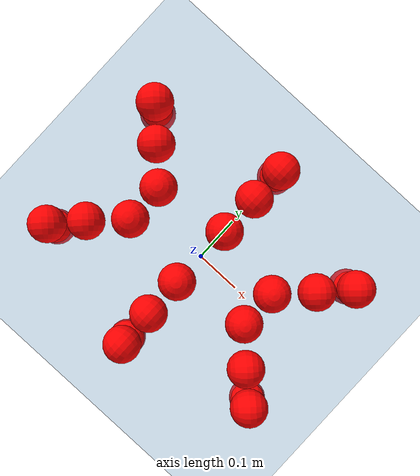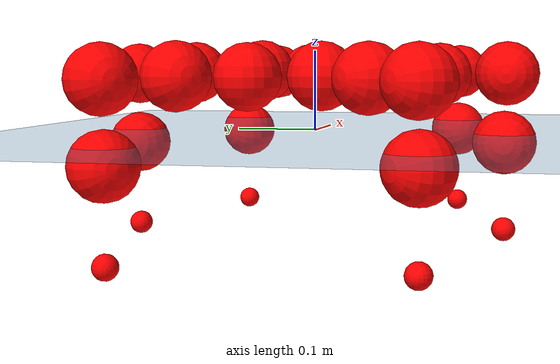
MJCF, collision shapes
<mujoco model="Golem">
  <compiler angle="radian" assetdir="assets" balanceinertia="true" inertiafromgeom="false"/>

  <option timestep="0.005" density="1.2" viscosity="2e-05"/>

  <size nkey="1"/>

  <visual>
    <quality shadowsize="8192"/>
    <map shadowclip="0.5"/>
  </visual>

  <default>
    <default class="/">
      <joint armature="0.01" damping="0.01" frictionloss="0.01"/>
      <geom contype="0" conaffinity="0" group="1" solref="-1000 -80"/>
      <site size="0.01 0.005 0.005" group="5"/>
      <general forcelimited="true" biastype="affine" gainprm="25" biasprm="0 -25 -0.5"/>
      <default class="visual">
        <geom type="mesh" group="2"/>
      </default>
      <default class="collision">
        <geom group="3"/>
      </default>
      <default class="foot">
        <geom size="0.01 0 0" condim="6" group="4" priority="1" solimp="0.015 1 0.01"/>
      </default>
      <default class="reward_collision_sphere">
        <geom group="5" rgba="1 0 0 1"/>
      </default>
    </default>
  </default>

  <asset>
    <texture type="skybox" colorspace="auto" name="//unnamed_texture_0" builtin="gradient" rgb1="0.95 0.95 0.95" rgb2="0.95 0.95 0.95" width="100" height="600"/>
    <texture type="2d" colorspace="auto" name="texplane" builtin="checker" rgb1="0.345 0.575 0.748" rgb2="0.345 0.575 0.748" markrgb="1 1 1" width="512" height="512"/>
    <material name="MatPlane" class="/" texture="texplane" texuniform="true" texrepeat="2 2" specular="0.9"/>
    <mesh name="body" class="/" file="body.stl" scale="0.001 0.001 0.001"/>
    <mesh name="coxa" class="/" file="coxa.stl" scale="0.001 0.001 0.001"/>
    <mesh name="femur" class="/" file="femur.stl" scale="0.001 0.001 0.001"/>
    <mesh name="tibia" class="/" file="tibia.stl" scale="0.001 0.001 0.001"/>
    <mesh name="tarsus" class="/" file="tarsus.stl" scale="0.001 0.001 0.001"/>
  </asset>

  <worldbody>
    <geom name="floor" class="/" size="100 100 0.125" type="plane" group="0" material="MatPlane"/>
    <light name="toplight_shadow" class="/" pos="0 0 5" dir="0.0990148 0.0990148 -0.990148" type="directional" ambient="0.04 0.04 0.04" diffuse="0.55 0.55 0.55" specular="0.12 0.12 0.12"/>
    <light name="toplight_fill" class="/" pos="0 0 5" dir="0.0990148 0.0990148 -0.990148" type="directional" castshadow="false" ambient="0.04 0.04 0.04" diffuse="0.3 0.3 0.3" specular="0.08 0.08 0.08"/>
    <body name="trunk" pos="-0.000130999 0.000298819 -0.00270602" quat="1 3.0487e-05 -6.21043e-06 -4.08878e-05">
      <inertial pos="0.00102127 -0.000110688 -0.00101087" quat="0.999957 0.00790547 -0.00321786 -0.00371474" mass="3.50831" diaginertia="0.00934829 0.0025393 0.0219097"/>
      <joint name="//unnamed_joint_0" type="free"/>
      <geom name="//unnamed_geom_1" class="/" pos="0 0 0.0748914" quat="1 0 0 0" type="mesh" rgba="0.9 0.9 0.9 1" mesh="body"/>
      <site name="imu" class="/" pos="0.130139 0.000206197 0.111897" size="0.0097294"/>
      <camera name="track" class="/" pos="0 -1.51234 0" quat="0.707107 0.707107 0 0" mode="trackcom"/>
      <camera name="ego_camera" class="/" pos="0.129021 0 0.117018" quat="-0.5 -0.5 0.5 0.5"/>
      <body name="coxa_RR" pos="-0.176317 -0.062188 0.0741123" quat="0.382749 6.69455e-05 -0.00018999 -0.923853">
        <inertial pos="-0.000395463 -0.00266583 0.000603118" quat="0.999987 -0.000858759 0.0045689 0.00196731" mass="0.177588" diaginertia="0.00912228 0.00246926 0.0210076"/>
        <joint name="coxa_joint_RR" class="/" pos="0 0 0" axis="-0.0069245 -0.00386449 -0.999969" range="-3.13997 3.10818" armature="0.00932857" damping="0.0113889" frictionloss="0.00953845"/>
        <geom name="//unnamed_geom_2" class="/" type="mesh" rgba="0.2 0.2 0.2 1" mesh="coxa"/>
        <geom name="//unnamed_geom_3" class="reward_collision_sphere" size="0.0389176" pos="-0.0297741 0 0"/>
        <body name="femur_RR" pos="0.0595009 8.30278e-05 -0.000769533" quat="0.499764 -0.499853 0.499902 0.50048">
          <inertial pos="0.00122311 0.000694378 -0.00065135" quat="0.999999 0.000514651 -0.000946294 0.000188601" mass="0.183421" diaginertia="0.00962873 0.00247045 0.0218486"/>
          <joint name="femur_joint_RR" class="/" pos="0 0 0" axis="0.000581497 0.000210104 -1" range="-3.16135 3.0862" armature="0.00891726" damping="0" frictionloss="0.0105975"/>
          <geom name="//unnamed_geom_4" class="/" type="mesh" rgba="0.9 0.9 0.9 1" mesh="femur"/>
          <geom name="//unnamed_geom_5" class="reward_collision_sphere" size="0.0389176"/>
          <body name="tibia_RR" pos="0.00100536 -0.0797247 0.00267656" quat="-0.000147593 1 2.24323e-05 0.00012479">
            <inertial pos="-0.00240945 -0.00104269 1.62909e-05" quat="0.999949 0.00454973 -0.000678868 0.00903416" mass="0.183984" diaginertia="0.00947758 0.0024955 0.0223241"/>
            <joint name="tibia_joint_RR" class="/" pos="0 0 0" axis="-0.000640676 8.07289e-05 1" range="-3.19376 3.14601" armature="0.00886497" damping="0" frictionloss="0.0096865"/>
            <geom name="//unnamed_geom_6" class="/" type="mesh" rgba="0.2 0.2 0.2 1" mesh="tibia"/>
            <geom name="//unnamed_geom_7" class="reward_collision_sphere" size="0.0389176"/>
            <body name="tarsus_RR" pos="0.0855996 0.000649518 -0.000508327" quat="1 -0.000111261 0.000430309 0.000307026">
              <inertial pos="0.0578134 0.0029607 -0.00175645" quat="0.49866 0.502173 0.499275 0.499885" mass="0.182416" diaginertia="0.00948339 0.00246238 0.0217198"/>
              <joint name="tarsus_joint_RR" class="/" pos="0 0 0" axis="-0.00236966 -0.00189666 0.999995" range="-3.15142 3.14078" armature="0.0107686" damping="0.00583629" frictionloss="0.0107896"/>
              <geom name="//unnamed_geom_8" class="/" type="mesh" rgba="0.9 0.9 0.9 1" mesh="tarsus"/>
              <geom name="foot_1" class="foot" size="0.00898592" pos="0.111157 0 0" quat="0 -0.707107 0 0.707107"/>
              <geom name="//unnamed_geom_10" class="reward_collision_sphere" size="0.0389176"/>
              <geom name="//unnamed_geom_11" class="reward_collision_sphere" size="0.0145941" pos="0.106691 0 0"/>
              <site name="foot_1" class="foot" pos="0.111157 0 0" quat="0 -0.707107 0 0.707107" size="0.0097294"/>
            </body>
          </body>
        </body>
      </body>
      <body name="coxa_RM" pos="-3.15621e-05 -0.100711 0.0726825" quat="0.7078 -0.000923395 -0.000279381 -0.706412">
        <inertial pos="-0.00242821 3.36938e-06 0.000288815" quat="0.999996 -0.00072923 0.000280089 -0.00267967" mass="0.180916" diaginertia="0.00943231 0.00242198 0.0222112"/>
        <joint name="coxa_joint_RM" class="/" pos="0 0 0" axis="1.7082e-05 -0.00128846 -0.999999" range="-3.19307 3.14582" armature="0.0101059" damping="0.00822894" frictionloss="0.00981624"/>
        <geom name="//unnamed_geom_12" class="/" type="mesh" rgba="0.2 0.2 0.2 1" mesh="coxa"/>
        <geom name="//unnamed_geom_13" class="reward_collision_sphere" size="0.0389176" pos="-0.0297741 0 0"/>
        <body name="femur_RM" pos="0.0560784 0.000850207 0.000802498" quat="0.499274 -0.500961 0.499629 0.500135">
          <inertial pos="4.33484e-05 0.00017645 -0.000341077" quat="0.999918 0.00761667 0.00689337 -0.0075927" mass="0.189818" diaginertia="0.00990439 0.00247387 0.0225135"/>
          <joint name="femur_joint_RM" class="/" pos="0 0 0" axis="-0.00217599 0.00010411 -0.999998" range="-3.14821 3.1448" armature="0.00956701" damping="0.00853933" frictionloss="0.00990851"/>
          <geom name="//unnamed_geom_14" class="/" type="mesh" rgba="0.9 0.9 0.9 1" mesh="femur"/>
          <geom name="//unnamed_geom_15" class="reward_collision_sphere" size="0.0389176"/>
          <body name="tibia_RM" pos="-0.00139253 -0.0814747 0.00194593" quat="8.30232e-05 1 -0.000381198 0.000254625">
            <inertial pos="0.000813681 0.00227202 0.000618567" quat="0.999986 0.000954479 -0.00022799 0.00519627" mass="0.189982" diaginertia="0.0100226 0.00255969 0.022915"/>
            <joint name="tibia_joint_RM" class="/" pos="0 0 0" axis="-0.00169445 -0.00374532 0.999992" stiffness="0.000389477" range="-3.10651 3.08831" armature="0.00993633" damping="0" frictionloss="0.00994359"/>
            <geom name="//unnamed_geom_16" class="/" type="mesh" rgba="0.2 0.2 0.2 1" mesh="tibia"/>
            <geom name="//unnamed_geom_17" class="reward_collision_sphere" size="0.0389176"/>
            <body name="tarsus_RM" pos="0.0842832 -0.00273752 0.00128447" quat="1 0.00086836 -0.000322264 -0.000200457">
              <inertial pos="0.0593875 0.00305774 -0.000402152" quat="0.499862 0.498895 0.501034 0.500206" mass="0.173951" diaginertia="0.00943352 0.002384 0.0213461"/>
              <joint name="tarsus_joint_RM" class="/" pos="0 0 0" axis="0.00371562 -0.00180872 0.999991" range="-3.14791 3.15798" armature="0.010186" damping="0.00284222" frictionloss="0.00974173"/>
              <geom name="//unnamed_geom_18" class="/" type="mesh" rgba="0.9 0.9 0.9 1" mesh="tarsus"/>
              <geom name="foot_2" class="foot" size="0.00962842" pos="0.111157 0 0" quat="0 -0.707107 0 0.707107"/>
              <geom name="//unnamed_geom_20" class="reward_collision_sphere" size="0.0389176"/>
              <geom name="//unnamed_geom_21" class="reward_collision_sphere" size="0.0145941" pos="0.106691 0 0"/>
              <site name="foot_2" class="foot" pos="0.111157 0 0" quat="0 -0.707107 0 0.707107" size="0.0097294"/>
            </body>
          </body>
        </body>
      </body>
      <body name="coxa_RF" pos="0.178662 -0.0630343 0.0740993" quat="0.924173 0.000278611 -0.000249582 -0.381973">
        <inertial pos="-0.00261819 -0.00116897 0.00250717" quat="0.99999 0.00439614 -0.000426798 0.00106737" mass="0.188014" diaginertia="0.00976263 0.00247037 0.022202"/>
        <joint name="coxa_joint_RF" class="/" pos="0 0 0" axis="-0.000545377 0.000323017 -1" range="-3.16068 3.13839" armature="0.00855778" damping="0.0104928" frictionloss="0.0103501"/>
        <geom name="//unnamed_geom_22" class="/" type="mesh" rgba="0.2 0.2 0.2 1" mesh="coxa"/>
        <geom name="//unnamed_geom_23" class="reward_collision_sphere" size="0.0389176" pos="-0.0297741 0 0"/>
        <body name="femur_RF" pos="0.0613007 -0.000287938 -0.00158241" quat="0.498998 -0.49987 0.500481 0.500649">
          <inertial pos="0.000825015 -0.000305512 -0.000292292" quat="0.999998 -0.000671118 -0.00186818 0.000947638" mass="0.172674" diaginertia="0.00962714 0.00241695 0.020961"/>
          <joint name="femur_joint_RF" class="/" pos="0 0 0" axis="-0.00112581 0.00102476 -0.999999" range="-3.14687 3.08437" armature="0.00857664" damping="0" frictionloss="0.00843245"/>
          <geom name="//unnamed_geom_24" class="/" type="mesh" rgba="0.9 0.9 0.9 1" mesh="femur"/>
          <geom name="//unnamed_geom_25" class="reward_collision_sphere" size="0.0389176"/>
          <body name="tibia_RF" pos="-0.00111704 -0.0789409 0.0026709" quat="1.52747e-05 1 5.32284e-06 -7.16452e-06">
            <inertial pos="-0.00246402 0.000949464 -0.00018811" quat="0.999998 0.000149665 -0.00187532 0.00113685" mass="0.180895" diaginertia="0.00920204 0.00242694 0.0215541"/>
            <joint name="tibia_joint_RF" class="/" pos="0 0 0" axis="-0.00578336 -0.00046151 0.999983" range="-3.1144 3.14535" armature="0.00963468" damping="0" frictionloss="0.0102239"/>
            <geom name="//unnamed_geom_26" class="/" type="mesh" rgba="0.2 0.2 0.2 1" mesh="tibia"/>
            <geom name="//unnamed_geom_27" class="reward_collision_sphere" size="0.0389176"/>
            <body name="tarsus_RF" pos="0.085647 -0.00047473 -0.00256126" quat="1 -0.000672112 -0.00056448 0.000181085">
              <inertial pos="0.0572031 -0.000947259 -0.0006896" quat="0.503174 0.508919 0.495115 0.492624" mass="0.180825" diaginertia="0.00959432 0.002513 0.0210873"/>
              <joint name="tarsus_joint_RF" class="/" pos="0 0 0" axis="0.00279705 -0.00480291 0.999985" range="-3.11997 3.13342" armature="0.00840701" damping="0.000361509" frictionloss="0.00851329"/>
              <geom name="//unnamed_geom_28" class="/" type="mesh" rgba="0.9 0.9 0.9 1" mesh="tarsus"/>
              <geom name="foot_3" class="foot" size="0.00969501" pos="0.111157 0 0" quat="0 -0.707107 0 0.707107"/>
              <geom name="//unnamed_geom_30" class="reward_collision_sphere" size="0.0389176"/>
              <geom name="//unnamed_geom_31" class="reward_collision_sphere" size="0.0145941" pos="0.106691 0 0"/>
              <site name="foot_3" class="foot" pos="0.111157 0 0" quat="0 -0.707107 0 0.707107" size="0.0097294"/>
            </body>
          </body>
        </body>
      </body>
      <body name="coxa_LR" pos="-0.177245 0.0650904 0.0728678" quat="0.382389 -0.000173259 6.46447e-05 0.924001">
        <inertial pos="-0.000245901 -0.000707353 0.00028866" quat="0.999908 -0.00199573 -0.0133411 -0.00113237" mass="0.184936" diaginertia="0.00963321 0.00253475 0.0219177"/>
        <joint name="coxa_joint_LR" class="/" pos="0 0 0" axis="0.00358055 0.00414487 -0.999985" stiffness="0.00216754" range="-3.14626 3.1438" armature="0.010851" damping="0.0147987" frictionloss="0.00944903"/>
        <geom name="//unnamed_geom_32" class="/" type="mesh" rgba="0.2 0.2 0.2 1" mesh="coxa"/>
        <geom name="//unnamed_geom_33" class="reward_collision_sphere" size="0.0389176" pos="-0.0297741 0 0"/>
        <body name="femur_LR" pos="0.0580976 0.000583839 0.00162716" quat="0.499306 -0.500391 0.50021 0.500092">
          <inertial pos="-0.00251304 -0.00273435 0.00253259" quat="1 0.000236276 2.62735e-05 -0.000246293" mass="0.19183" diaginertia="0.00977252 0.00257227 0.0223128"/>
          <joint name="femur_joint_LR" class="/" pos="0 0 0" axis="-0.00557988 0.0135271 0.999893" range="-3.176 3.09765" armature="0.0109638" damping="0" frictionloss="0.00853688"/>
          <geom name="//unnamed_geom_34" class="/" type="mesh" rgba="0.9 0.9 0.9 1" mesh="femur"/>
          <geom name="//unnamed_geom_35" class="reward_collision_sphere" size="0.0389176"/>
          <body name="tibia_LR" pos="0.0019075 -0.0851438 -0.000752946" quat="6.3669e-06 1 -2.08845e-05 -1.22713e-06">
            <inertial pos="-6.94166e-05 -0.00264154 -0.000157052" quat="0.999996 0.0018765 -0.00191934 0.000750721" mass="0.175214" diaginertia="0.00927101 0.00243927 0.0207118"/>
            <joint name="tibia_joint_LR" class="/" pos="0 0 0" axis="0.000669488 0.0125759 -0.999921" range="-3.14589 3.0864" armature="0.00973396" damping="0" frictionloss="0.0105764"/>
            <geom name="//unnamed_geom_36" class="/" type="mesh" rgba="0.2 0.2 0.2 1" mesh="tibia"/>
            <geom name="//unnamed_geom_37" class="reward_collision_sphere" size="0.0389176"/>
            <body name="tarsus_LR" pos="0.0905516 -0.00146192 -0.000964087" quat="1 0.000679734 -0.000321814 0.000240471">
              <inertial pos="0.059921 0.000598533 -0.00202209" quat="0.499855 0.502045 0.499234 0.49886" mass="0.180216" diaginertia="0.00965281 0.00249645 0.0215596"/>
              <joint name="tarsus_joint_LR" class="/" pos="0 0 0" axis="0.00221894 0.00242708 -0.999995" range="-3.18449 3.14594" armature="0.00853529" damping="0.0281255" frictionloss="0.00946955"/>
              <geom name="//unnamed_geom_38" class="/" type="mesh" rgba="0.9 0.9 0.9 1" mesh="tarsus"/>
              <geom name="foot_4" class="foot" size="0.00970629" pos="0.111157 0 0" quat="0.707107 0 -0.707107 0"/>
              <geom name="//unnamed_geom_40" class="reward_collision_sphere" size="0.0389176"/>
              <geom name="//unnamed_geom_41" class="reward_collision_sphere" size="0.0145941" pos="0.106691 0 0"/>
              <site name="foot_4" class="foot" pos="0.111157 0 0" quat="0.707107 0 -0.707107 0" size="0.0097294"/>
            </body>
          </body>
        </body>
      </body>
      <body name="coxa_LM" pos="0.002206 0.0984583 0.0771988" quat="0.70715 0.00030415 2.35095e-05 0.707063">
        <inertial pos="0.00173536 -0.000664464 0.000206742" quat="0.999995 -0.00211174 0.00222357 0.000657827" mass="0.177983" diaginertia="0.00988391 0.00246146 0.0216033"/>
        <joint name="coxa_joint_LM" class="/" pos="0 0 0" axis="-0.0118113 0.00325944 -0.999925" range="-3.13729 3.19249" armature="0.00968582" damping="0.0060624" frictionloss="0.00967489"/>
        <geom name="//unnamed_geom_42" class="/" type="mesh" rgba="0.2 0.2 0.2 1" mesh="coxa"/>
        <geom name="//unnamed_geom_43" class="reward_collision_sphere" size="0.0389176" pos="-0.0297741 0 0"/>
        <body name="femur_LM" pos="0.0589529 1.4683e-05 -0.00203059" quat="0.500097 -0.50019 0.498943 0.500769">
          <inertial pos="0.00203076 0.00074094 -0.00175163" quat="0.999998 -0.00133876 -0.00154198 -0.000424717" mass="0.195807" diaginertia="0.0100335 0.00254808 0.0231901"/>
          <joint name="femur_joint_LM" class="/" pos="0 0 0" axis="-0.00232076 -0.00876331 0.999959" stiffness="0.011558" range="-3.19395 3.08584" armature="0.00942821" damping="0.00351957" frictionloss="0.0105745"/>
          <geom name="//unnamed_geom_44" class="/" type="mesh" rgba="0.9 0.9 0.9 1" mesh="femur"/>
          <geom name="//unnamed_geom_45" class="reward_collision_sphere" size="0.0389176"/>
          <body name="tibia_LM" pos="0.00177367 -0.0784814 -0.00116791" quat="-0.000129791 1 -0.00028047 -0.000284674">
            <inertial pos="0.00181869 -0.000994022 0.000623976" quat="0.999997 -4.53522e-05 -0.000889781 0.00208094" mass="0.186375" diaginertia="0.00973256 0.00242242 0.0225587"/>
            <joint name="tibia_joint_LM" class="/" pos="0 0 0" axis="-0.00640382 -0.00426674 -0.99997" range="-3.14983 3.13412" armature="0.00845798" damping="0" frictionloss="0.0094681"/>
            <geom name="//unnamed_geom_46" class="/" type="mesh" rgba="0.2 0.2 0.2 1" mesh="tibia"/>
            <geom name="//unnamed_geom_47" class="reward_collision_sphere" size="0.0389176"/>
            <body name="tarsus_LM" pos="0.0894878 -0.000502701 -0.00100262" quat="1 -0.000148185 9.69535e-05 0.000248441">
              <inertial pos="0.060197 0.000154502 0.00231188" quat="0.498846 0.501893 0.499832 0.499424" mass="0.183874" diaginertia="0.00930965 0.00254507 0.0219846"/>
              <joint name="tarsus_joint_LM" class="/" pos="0 0 0" axis="0.000489032 -0.00372851 -0.999993" range="-3.12478 3.15133" armature="0.00976224" damping="0.00736971" frictionloss="0.00978497"/>
              <geom name="//unnamed_geom_48" class="/" type="mesh" rgba="0.9 0.9 0.9 1" mesh="tarsus"/>
              <geom name="foot_5" class="foot" size="0.00883417" pos="0.111157 0 0" quat="0.707107 0 -0.707107 0"/>
              <geom name="//unnamed_geom_50" class="reward_collision_sphere" size="0.0389176"/>
              <geom name="//unnamed_geom_51" class="reward_collision_sphere" size="0.0145941" pos="0.106691 0 0"/>
              <site name="foot_5" class="foot" pos="0.111157 0 0" quat="0.707107 0 -0.707107 0" size="0.0097294"/>
            </body>
          </body>
        </body>
      </body>
      <body name="coxa_LF" pos="0.179196 0.0620041 0.0738173" quat="0.923911 -0.000328099 -0.00130685 0.382605">
        <inertial pos="0.000448343 -0.000117798 0.00240026" quat="0.999988 -0.000306797 0.00482366 0.00100397" mass="0.183875" diaginertia="0.00981923 0.0024001 0.0219802"/>
        <joint name="coxa_joint_LF" class="/" pos="0 0 0" axis="0.012502 -0.00746414 -0.999894" range="-3.16108 3.12995" armature="0.00954679" damping="0.0143779" frictionloss="0.00856984"/>
        <geom name="//unnamed_geom_52" class="/" type="mesh" rgba="0.2 0.2 0.2 1" mesh="coxa"/>
        <geom name="//unnamed_geom_53" class="reward_collision_sphere" size="0.0389176" pos="-0.0297741 0 0"/>
        <body name="femur_LF" pos="0.0604226 -0.000369639 -0.00102892" quat="0.499934 -0.500027 0.500018 0.50002">
          <inertial pos="-0.000441499 0.000211199 0.00270036" quat="0.999963 0.00397296 0.00766969 -0.0002586" mass="0.18955" diaginertia="0.00934255 0.00249807 0.0218818"/>
          <joint name="femur_joint_LF" class="/" pos="0 0 0" axis="-0.000813929 0.0118146 0.99993" stiffness="0.00217538" range="-3.15047 3.13509" armature="0.00980008" damping="0.009497" frictionloss="0.0109831"/>
          <geom name="//unnamed_geom_54" class="/" type="mesh" rgba="0.9 0.9 0.9 1" mesh="femur"/>
          <geom name="//unnamed_geom_55" class="reward_collision_sphere" size="0.0389176"/>
          <body name="tibia_LF" pos="0.00106483 -0.0801822 0.00267544" quat="-0.000791384 0.999999 0.000734489 0.000775162">
            <inertial pos="-0.000984247 0.000897701 -0.00244389" quat="0.999909 0.0130797 0.000301977 -0.00343164" mass="0.19234" diaginertia="0.00984821 0.00247793 0.0219443"/>
            <joint name="tibia_joint_LF" class="/" pos="0 0 0" axis="-0.000945929 0.000103458 -1" range="-3.0883 3.14234" armature="0.00990248" damping="0.0160742" frictionloss="0.00970787"/>
            <geom name="//unnamed_geom_56" class="/" type="mesh" rgba="0.2 0.2 0.2 1" mesh="tibia"/>
            <geom name="//unnamed_geom_57" class="reward_collision_sphere" size="0.0389176"/>
            <body name="tarsus_LF" pos="0.0900029 0.00282813 -0.000708465" quat="1 -4.08397e-05 0.000141223 0.000196743">
              <inertial pos="0.0572177 0.000803969 0.000291371" quat="0.499774 0.499474 0.500801 0.499951" mass="0.17761" diaginertia="0.00932947 0.00237882 0.0220845"/>
              <joint name="tarsus_joint_LF" class="/" pos="0 0 0" axis="-0.0123571 -0.00661819 -0.999902" range="-3.13138 3.09145" armature="0.0110874" damping="0.0101166" frictionloss="0.0110149"/>
              <geom name="//unnamed_geom_58" class="/" type="mesh" rgba="0.9 0.9 0.9 1" mesh="tarsus"/>
              <geom name="foot_6" class="foot" size="0.00927292" pos="0.111157 0 0" quat="0.707107 0 -0.707107 0"/>
              <geom name="//unnamed_geom_60" class="reward_collision_sphere" size="0.0389176"/>
              <geom name="//unnamed_geom_61" class="reward_collision_sphere" size="0.0145941" pos="0.106691 0 0"/>
              <site name="foot_6" class="foot" pos="0.111157 0 0" quat="0.707107 0 -0.707107 0" size="0.0097294"/>
            </body>
          </body>
        </body>
      </body>
    </body>
  </worldbody>

  <contact>
    <pair class="/" geom1="floor" geom2="foot_1" name="//unnamed_contact_0"/>
    <pair class="/" geom1="floor" geom2="foot_2" name="//unnamed_contact_1"/>
    <pair class="/" geom1="floor" geom2="foot_3" name="//unnamed_contact_2"/>
    <pair class="/" geom1="floor" geom2="foot_4" name="//unnamed_contact_3"/>
    <pair class="/" geom1="floor" geom2="foot_5" name="//unnamed_contact_4"/>
    <pair class="/" geom1="floor" geom2="foot_6" name="//unnamed_contact_5"/>
  </contact>

  <actuator>
    <general name="coxa_joint_RR" class="/" joint="coxa_joint_RR" forcerange="-7.4546 7.4546" gainprm="23.2031" biasprm="0 -23.2031 -0.500589"/>
    <general name="femur_joint_RR" class="/" joint="femur_joint_RR" forcerange="-7.63347 7.63347" gainprm="23.2031" biasprm="0 -23.2031 -0.500589"/>
    <general name="tibia_joint_RR" class="/" joint="tibia_joint_RR" forcerange="-6.53416 6.53416" gainprm="23.2031" biasprm="0 -23.2031 -0.500589"/>
    <general name="tarsus_joint_RR" class="/" joint="tarsus_joint_RR" forcerange="-6.47083 6.47083" gainprm="23.2031" biasprm="0 -23.2031 -0.500589"/>
    <general name="coxa_joint_RM" class="/" joint="coxa_joint_RM" forcerange="-6.38704 6.38704" gainprm="23.2031" biasprm="0 -23.2031 -0.500589"/>
    <general name="femur_joint_RM" class="/" joint="femur_joint_RM" forcerange="-6.85 6.85" gainprm="23.2031" biasprm="0 -23.2031 -0.500589"/>
    <general name="tibia_joint_RM" class="/" joint="tibia_joint_RM" forcerange="-7.06636 7.06636" gainprm="23.2031" biasprm="0 -23.2031 -0.500589"/>
    <general name="tarsus_joint_RM" class="/" joint="tarsus_joint_RM" forcerange="-6.97176 6.97176" gainprm="23.2031" biasprm="0 -23.2031 -0.500589"/>
    <general name="coxa_joint_RF" class="/" joint="coxa_joint_RF" forcerange="-7.08553 7.08553" gainprm="23.2031" biasprm="0 -23.2031 -0.500589"/>
    <general name="femur_joint_RF" class="/" joint="femur_joint_RF" forcerange="-7.79777 7.79777" gainprm="23.2031" biasprm="0 -23.2031 -0.500589"/>
    <general name="tibia_joint_RF" class="/" joint="tibia_joint_RF" forcerange="-7.82241 7.82241" gainprm="23.2031" biasprm="0 -23.2031 -0.500589"/>
    <general name="tarsus_joint_RF" class="/" joint="tarsus_joint_RF" forcerange="-7.80429 7.80429" gainprm="23.2031" biasprm="0 -23.2031 -0.500589"/>
    <general name="coxa_joint_LR" class="/" joint="coxa_joint_LR" forcerange="-7.13149 7.13149" gainprm="23.2031" biasprm="0 -23.2031 -0.500589"/>
    <general name="femur_joint_LR" class="/" joint="femur_joint_LR" forcerange="-7.16207 7.16207" gainprm="23.2031" biasprm="0 -23.2031 -0.500589"/>
    <general name="tibia_joint_LR" class="/" joint="tibia_joint_LR" forcerange="-7.81136 7.81136" gainprm="23.2031" biasprm="0 -23.2031 -0.500589"/>
    <general name="tarsus_joint_LR" class="/" joint="tarsus_joint_LR" forcerange="-7.82068 7.82068" gainprm="23.2031" biasprm="0 -23.2031 -0.500589"/>
    <general name="coxa_joint_LM" class="/" joint="coxa_joint_LM" forcerange="-7.22247 7.22247" gainprm="23.2031" biasprm="0 -23.2031 -0.500589"/>
    <general name="femur_joint_LM" class="/" joint="femur_joint_LM" forcerange="-7.17577 7.17577" gainprm="23.2031" biasprm="0 -23.2031 -0.500589"/>
    <general name="tibia_joint_LM" class="/" joint="tibia_joint_LM" forcerange="-7.09328 7.09328" gainprm="23.2031" biasprm="0 -23.2031 -0.500589"/>
    <general name="tarsus_joint_LM" class="/" joint="tarsus_joint_LM" forcerange="-7.18342 7.18342" gainprm="23.2031" biasprm="0 -23.2031 -0.500589"/>
    <general name="coxa_joint_LF" class="/" joint="coxa_joint_LF" forcerange="-7.1685 7.1685" gainprm="23.2031" biasprm="0 -23.2031 -0.500589"/>
    <general name="femur_joint_LF" class="/" joint="femur_joint_LF" forcerange="-7.79232 7.79232" gainprm="23.2031" biasprm="0 -23.2031 -0.500589"/>
    <general name="tibia_joint_LF" class="/" joint="tibia_joint_LF" forcerange="-7.75176 7.75176" gainprm="23.2031" biasprm="0 -23.2031 -0.500589"/>
    <general name="tarsus_joint_LF" class="/" joint="tarsus_joint_LF" forcerange="-7.06011 7.06011" gainprm="23.2031" biasprm="0 -23.2031 -0.500589"/>
  </actuator>

  <sensor>
    <gyro site="imu" name="imu_angular_velocity"/>
    <velocimeter site="imu" name="imu_linear_velocity"/>
    <framelinvel objtype="site" objname="foot_1" name="foot_1_global_linear_velocity"/>
    <framelinvel objtype="site" objname="foot_2" name="foot_2_global_linear_velocity"/>
    <framelinvel objtype="site" objname="foot_3" name="foot_3_global_linear_velocity"/>
    <framelinvel objtype="site" objname="foot_4" name="foot_4_global_linear_velocity"/>
    <framelinvel objtype="site" objname="foot_5" name="foot_5_global_linear_velocity"/>
    <framelinvel objtype="site" objname="foot_6" name="foot_6_global_linear_velocity"/>
  </sensor>

  <keyframe>
    <key name="home" qpos="0 0 0.1457 1 0 0 0 0 0 0 0 0 0 0 0 0 0 0 0 0 0 0 0 0 0 0 0 0 0 0 0"/>
  </keyframe>
</mujoco>
